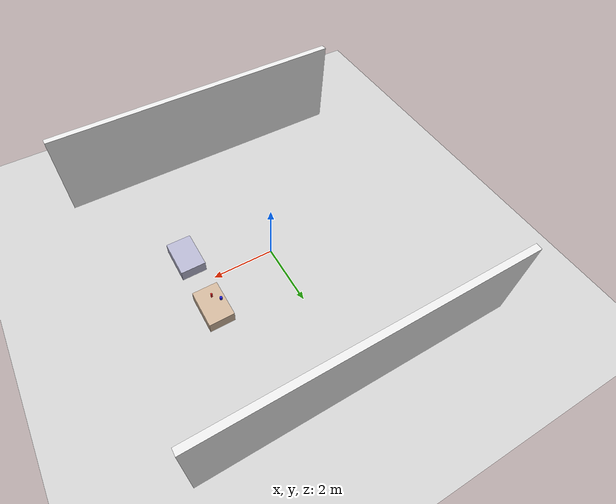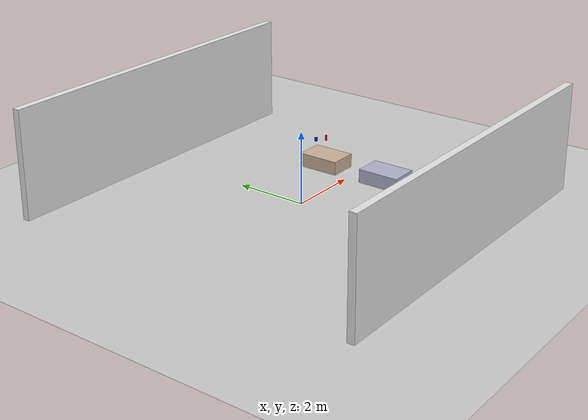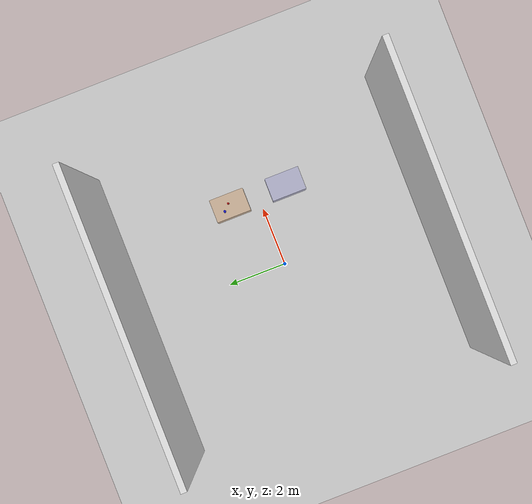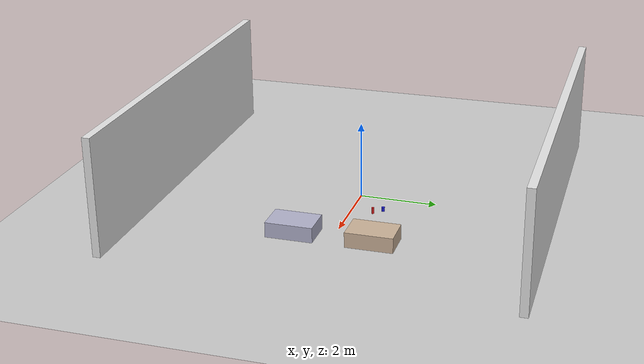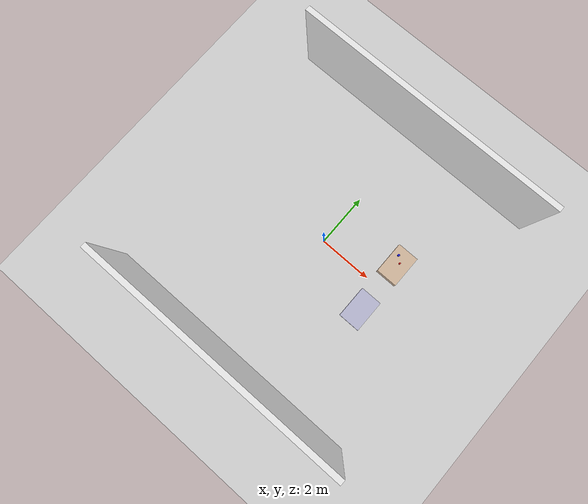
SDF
<?xml version="1.0"?>
<sdf version="1.6">
  <world name="home_environment">

    <!-- Physics -->
    <physics type="ode">
      <max_step_size>0.001</max_step_size>
      <real_time_factor>1.0</real_time_factor>
      <real_time_update_rate>1000</real_time_update_rate>
    </physics>

    <!-- Lighting -->
    <include>
      <uri>model://sun</uri>
    </include>

    <!-- Ground plane -->
    <include>
      <uri>model://ground_plane</uri>
    </include>

    <!-- Kitchen table (left) -->
    <model name="left_table">
      <static>true</static>
      <pose>2.5 1.0 0 0 0 0</pose>
      <link name="link">
        <collision name="surface">
          <geometry>
            <box>
              <size>0.8 1.2 0.75</size>
            </box>
          </geometry>
        </collision>
        <visual name="visual">
          <geometry>
            <box>
              <size>0.8 1.2 0.75</size>
            </box>
          </geometry>
          <material>
            <ambient>0.8 0.7 0.6 1</ambient>
            <diffuse>0.8 0.7 0.6 1</diffuse>
          </material>
        </visual>
      </link>
    </model>

    <!-- Kitchen table (right) -->
    <model name="right_table">
      <static>true</static>
      <pose>2.5 -1.0 0 0 0 0</pose>
      <link name="link">
        <collision name="surface">
          <geometry>
            <box>
              <size>0.8 1.2 0.75</size>
            </box>
          </geometry>
        </collision>
        <visual name="visual">
          <geometry>
            <box>
              <size>0.8 1.2 0.75</size>
            </box>
          </geometry>
          <material>
            <ambient>0.7 0.7 0.8 1</ambient>
            <diffuse>0.7 0.7 0.8 1</diffuse>
          </material>
        </visual>
      </link>
    </model>

    <!-- Red bottle on left table -->
    <model name="red_bottle">
      <pose>2.5 1.0 0.85 0 0 0</pose>
      <link name="link">
        <inertial>
          <mass>0.2</mass>
          <inertia>
            <ixx>0.001</ixx>
            <iyy>0.001</iyy>
            <izz>0.001</izz>
          </inertia>
        </inertial>
        <collision name="collision">
          <geometry>
            <cylinder>
              <radius>0.03</radius>
              <length>0.15</length>
            </cylinder>
          </geometry>
        </collision>
        <visual name="visual">
          <geometry>
            <cylinder>
              <radius>0.03</radius>
              <length>0.15</length>
            </cylinder>
          </geometry>
          <material>
            <ambient>0.8 0.1 0.1 1</ambient>
            <diffuse>0.8 0.1 0.1 1</diffuse>
          </material>
        </visual>
      </link>
    </model>

    <!-- Blue cup -->
    <model name="blue_cup">
      <pose>2.3 1.2 0.82 0 0 0</pose>
      <link name="link">
        <inertial>
          <mass>0.15</mass>
        </inertial>
        <collision name="collision">
          <geometry>
            <cylinder>
              <radius>0.04</radius>
              <length>0.10</length>
            </cylinder>
          </geometry>
        </collision>
        <visual name="visual">
          <geometry>
            <cylinder>
              <radius>0.04</radius>
              <length>0.10</length>
            </cylinder>
          </geometry>
          <material>
            <ambient>0.1 0.1 0.8 1</ambient>
            <diffuse>0.1 0.1 0.8 1</diffuse>
          </material>
        </visual>
      </link>
    </model>

    <!-- Walls -->
    <model name="wall_north">
      <static>true</static>
      <pose>0 5 1.5 0 0 0</pose>
      <link name="link">
        <collision name="collision">
          <geometry>
            <box>
              <size>10 0.2 3</size>
            </box>
          </geometry>
        </collision>
        <visual name="visual">
          <geometry>
            <box>
              <size>10 0.2 3</size>
            </box>
          </geometry>
          <material>
            <ambient>0.9 0.9 0.9 1</ambient>
          </material>
        </visual>
      </link>
    </model>

    <model name="wall_south">
      <static>true</static>
      <pose>0 -5 1.5 0 0 0</pose>
      <link name="link">
        <collision name="collision">
          <geometry>
            <box>
              <size>10 0.2 3</size>
            </box>
          </geometry>
        </collision>
        <visual name="visual">
          <geometry>
            <box>
              <size>10 0.2 3</size>
            </box>
          </geometry>
          <material>
            <ambient>0.9 0.9 0.9 1</ambient>
          </material>
        </visual>
      </link>
    </model>

    <!-- Camera (for visualization) -->
    <gui>
      <camera name="user_camera">
        <pose>-3 0 5 0 0.8 0</pose>
      </camera>
    </gui>

  </world>
</sdf>
